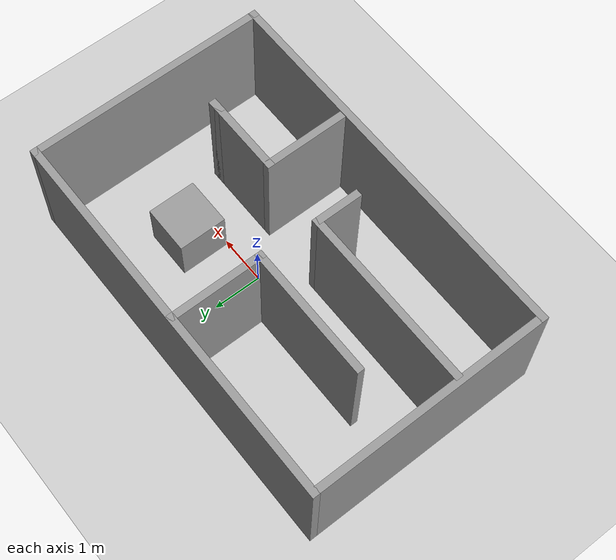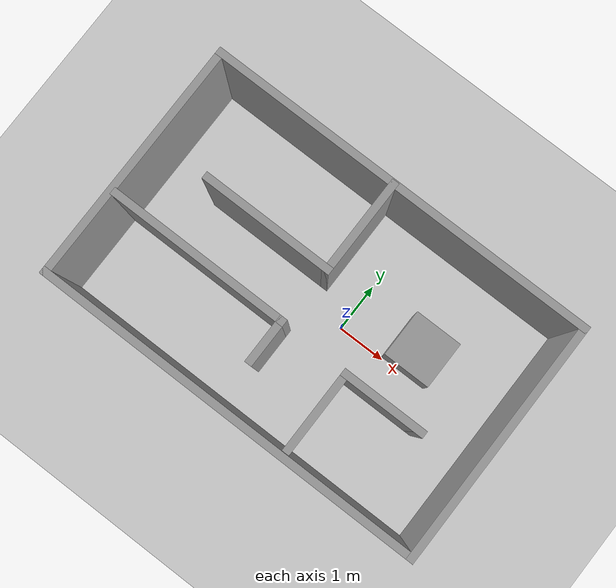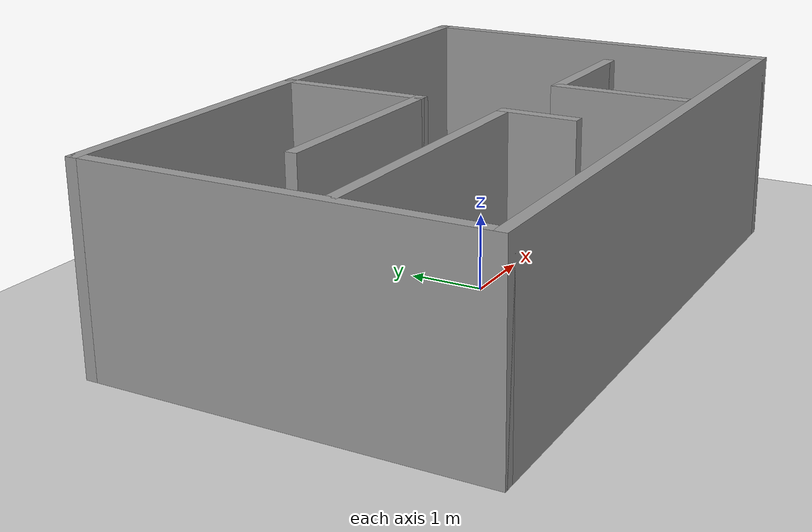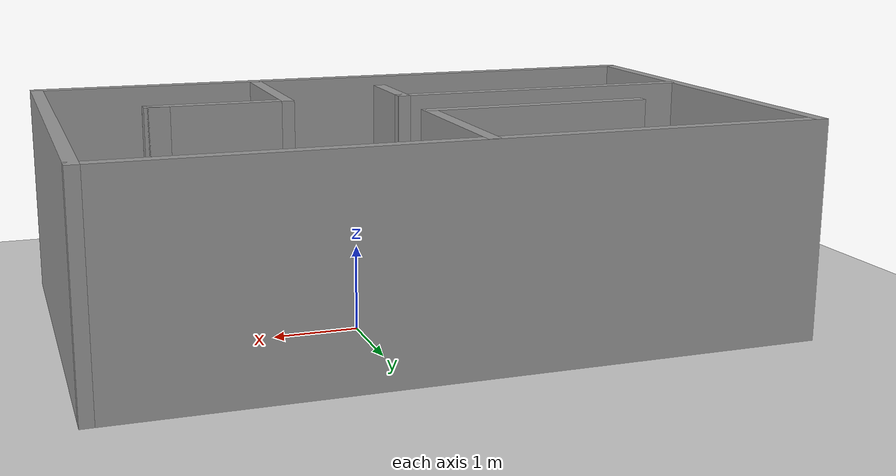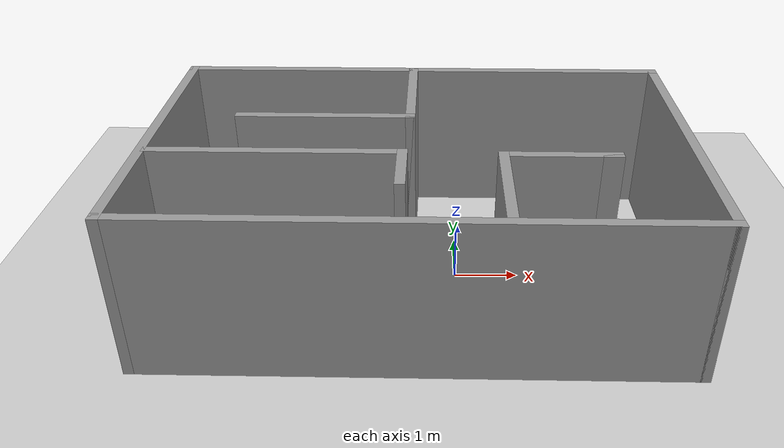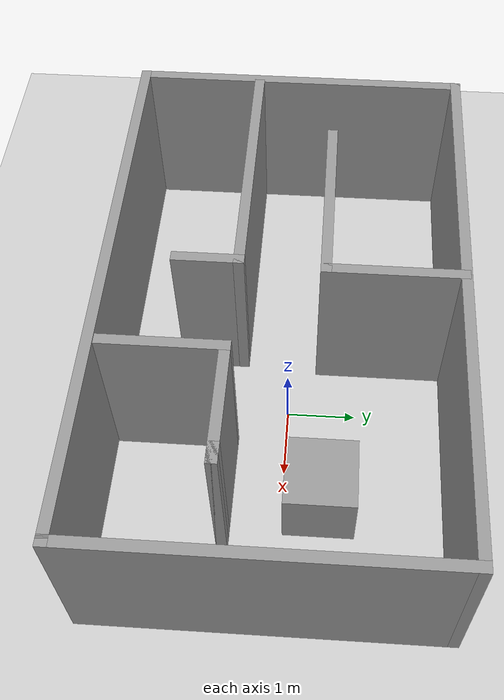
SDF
<sdf version="1.7">
 <world name="default">
  <light name="sun" type="directional">
   <pose>0 0 10 0 -0 0</pose>
   <diffuse>0.8 0.8 0.8 1</diffuse>
   <specular>0.2 0.2 0.2 1</specular>
   <attenuation>
    <range>1000</range>
    <constant>0.9</constant>
    <linear>0.01</linear>
    <quadratic>0.001</quadratic>
   </attenuation>
   <direction>-0.5 0.1 -0.9</direction>
   <spot><inner_angle>0</inner_angle><outer_angle>0</outer_angle><falloff>0</falloff></spot>
  </light>
  <model name="ground_plane">
   <static>1</static>
   <link name="link">
    <collision name="collision">
     <geometry><plane><normal>0 0 1</normal><size>100 100</size></plane></geometry>
     <surface>
      <contact><collide_bitmask>65535</collide_bitmask></contact>
      <friction><ode><mu>100</mu><mu2>50</mu2></ode></friction>
     </surface>
    </collision>
    <visual name="visual">
     <cast_shadows>0</cast_shadows>
     <geometry><plane><normal>0 0 1</normal><size>100 100</size></plane></geometry>
     <material>
      <script><uri>file://media/materials/scripts/gazebo.material</uri><name>Gazebo/Grey</name></script>
     </material>
    </visual>
   </link>
  </model>
  <gravity>0 0 -9.8</gravity>
  <magnetic_field>6e-06 2.3e-05 -4.2e-05</magnetic_field>
  <atmosphere type="adiabatic"/>
  <physics type="ode">
   <max_step_size>0.001</max_step_size>
   <real_time_factor>1</real_time_factor>
   <real_time_update_rate>1000</real_time_update_rate>
  </physics>
  <scene><ambient>0.4 0.4 0.4 1</ambient><background>0.7 0.7 0.7 1</background><shadows>1</shadows></scene>
  <audio><device>default</device></audio>
  <spherical_coordinates>
   <surface_model>EARTH_WGS84</surface_model>
   <latitude_deg>0</latitude_deg>
   <longitude_deg>0</longitude_deg>
   <elevation>0</elevation>
   <heading_deg>0</heading_deg>
  </spherical_coordinates>
  <model name="room">
   <pose>-0.583137 0.00359 0.139473 0 -0 0</pose>
   <link name="Wall_1">
    <collision name="Wall_1_Collision">
     <geometry><box><size>5 0.15 2.5</size></box></geometry>
     <pose>0 0 1.25 0 -0 0</pose>
    </collision>
    <visual name="Wall_1_Visual">
     <pose>0 0 1.25 0 -0 0</pose>
     <geometry><box><size>5 0.15 2.5</size></box></geometry>
     <material>
      <script><uri>file://media/materials/scripts/gazebo.material</uri><name>Gazebo/Grey</name></script>
      <ambient>1 1 1 1</ambient>
     </material>
     <meta><layer>0</layer></meta>
    </visual>
    <pose>-3.925 -0.0975 0 0 -0 -1.5708</pose>
   </link>
   <link name="Wall_10">
    <collision name="Wall_10_Collision">
     <geometry><box><size>3.75 0.15 2.5</size></box></geometry>
     <pose>0 0 1.25 0 -0 0</pose>
    </collision>
    <visual name="Wall_10_Visual">
     <pose>0 0 1.25 0 -0 0</pose>
     <geometry><box><size>3.75 0.15 2.5</size></box></geometry>
     <material>
      <script><uri>file://media/materials/scripts/gazebo.material</uri><name>Gazebo/Grey</name></script>
      <ambient>1 1 1 1</ambient>
     </material>
     <meta><layer>0</layer></meta>
    </visual>
    <pose>-2.02476 -0.722095 0 0 -0 0</pose>
   </link>
   <link name="Wall_11">
    <collision name="Wall_11_Collision">
     <geometry><box><size>1 0.15 2.5</size></box></geometry>
     <pose>0 0 1.25 0 -0 0</pose>
    </collision>
    <visual name="Wall_11_Visual">
     <pose>0 0 1.25 0 -0 0</pose>
     <geometry><box><size>1 0.15 2.5</size></box></geometry>
     <material>
      <script><uri>file://media/materials/scripts/gazebo.material</uri><name>Gazebo/Grey</name></script>
      <ambient>1 1 1 1</ambient>
     </material>
     <meta><layer>0</layer></meta>
    </visual>
    <pose>-0.224762 -1.14709 0 0 -0 -1.5708</pose>
   </link>
   <link name="Wall_13">
    <collision name="Wall_13_Collision">
     <geometry><box><size>1.75 0.15 2.5</size></box></geometry>
     <pose>0 0 1.25 0 -0 0</pose>
    </collision>
    <visual name="Wall_13_Visual">
     <pose>0 0 1.25 0 -0 0</pose>
     <geometry><box><size>1.75 0.15 2.5</size></box></geometry>
     <material>
      <script><uri>file://media/materials/scripts/gazebo.material</uri><name>Gazebo/Grey</name></script>
      <ambient>1 1 1 1</ambient>
     </material>
     <meta><layer>0</layer></meta>
    </visual>
    <pose>1.19489 -1.56616 0 0 -0 1.5708</pose>
   </link>
   <link name="Wall_14">
    <collision name="Wall_14_Collision">
     <geometry><box><size>1.75 0.15 2.5</size></box></geometry>
     <pose>0 0 1.25 0 -0 0</pose>
    </collision>
    <visual name="Wall_14_Visual">
     <pose>0 0 1.25 0 -0 0</pose>
     <geometry><box><size>1.75 0.15 2.5</size></box></geometry>
     <material>
      <script><uri>file://media/materials/scripts/gazebo.material</uri><name>Gazebo/Grey</name></script>
      <ambient>1 1 1 1</ambient>
     </material>
     <meta><layer>0</layer></meta>
    </visual>
    <pose>1.99489 -0.766161 0 0 -0 0</pose>
   </link>
   <link name="Wall_15">
    <collision name="Wall_15_Collision">
     <geometry><box><size>0.3 0.15 2.5</size></box></geometry>
     <pose>0 0 1.25 0 -0 0</pose>
    </collision>
    <visual name="Wall_15_Visual">
     <pose>0 0 1.25 0 -0 0</pose>
     <geometry><box><size>0.3 0.15 2.5</size></box></geometry>
     <material>
      <script><uri>file://media/materials/scripts/gazebo.material</uri><name>Gazebo/Grey</name></script>
      <ambient>1 1 1 1</ambient>
     </material>
     <meta><layer>0</layer></meta>
    </visual>
    <pose>2.71989 -0.766161 0 0 -0 3.14159</pose>
   </link>
   <link name="Wall_2">
    <collision name="Wall_2_Collision">
     <geometry><box><size>8 0.15 2.5</size></box></geometry>
     <pose>0 0 1.25 0 -0 0</pose>
    </collision>
    <visual name="Wall_2_Visual">
     <pose>0 0 1.25 0 -0 0</pose>
     <geometry><box><size>8 0.15 2.5</size></box></geometry>
     <material>
      <script><uri>file://media/materials/scripts/gazebo.material</uri><name>Gazebo/Grey</name></script>
      <ambient>1 1 1 1</ambient>
     </material>
     <meta><layer>0</layer></meta>
    </visual>
    <pose>0 -2.5225 0 0 -0 0</pose>
   </link>
   <link name="Wall_3">
    <collision name="Wall_3_Collision">
     <geometry><box><size>5 0.15 2.5</size></box></geometry>
     <pose>0 0 1.25 0 -0 0</pose>
    </collision>
    <visual name="Wall_3_Visual">
     <pose>0 0 1.25 0 -0 0</pose>
     <geometry><box><size>5 0.15 2.5</size></box></geometry>
     <material>
      <script><uri>file://media/materials/scripts/gazebo.material</uri><name>Gazebo/Grey</name></script>
      <ambient>1 1 1 1</ambient>
     </material>
     <meta><layer>0</layer></meta>
    </visual>
    <pose>3.925 -0.0975 0 0 -0 1.5708</pose>
   </link>
   <link name="Wall_4">
    <collision name="Wall_4_Collision">
     <geometry><box><size>8 0.15 2.5</size></box></geometry>
     <pose>0 0 1.25 0 -0 0</pose>
    </collision>
    <visual name="Wall_4_Visual">
     <pose>0 0 1.25 0 -0 0</pose>
     <geometry><box><size>8 0.15 2.5</size></box></geometry>
     <material>
      <script><uri>file://media/materials/scripts/gazebo.material</uri><name>Gazebo/Grey</name></script>
      <ambient>1 1 1 1</ambient>
     </material>
     <meta><layer>0</layer></meta>
    </visual>
    <pose>0 2.3275 0 0 -0 3.14159</pose>
   </link>
   <link name="Wall_6">
    <collision name="Wall_6_Collision">
     <geometry><box><size>2.75 0.15 2.5</size></box></geometry>
     <pose>0 0 1.25 0 -0 0</pose>
    </collision>
    <visual name="Wall_6_Visual">
     <pose>0 0 1.25 0 -0 0</pose>
     <geometry><box><size>2.75 0.15 2.5</size></box></geometry>
     <material>
      <script><uri>file://media/materials/scripts/gazebo.material</uri><name>Gazebo/Grey</name></script>
      <ambient>1 1 1 1</ambient>
     </material>
     <meta><layer>0</layer></meta>
    </visual>
    <pose>-1.445 0.4575 0 0 -0 0</pose>
   </link>
   <link name="Wall_8">
    <collision name="Wall_8_Collision">
     <geometry><box><size>2 0.15 2.5</size></box></geometry>
     <pose>0 0 1.25 0 -0 0</pose>
    </collision>
    <visual name="Wall_8_Visual">
     <pose>0 0 1.25 0 -0 0</pose>
     <geometry><box><size>2 0.15 2.5</size></box></geometry>
     <material>
      <script><uri>file://media/materials/scripts/gazebo.material</uri><name>Gazebo/Grey</name></script>
      <ambient>1 1 1 1</ambient>
     </material>
     <meta><layer>0</layer></meta>
    </visual>
    <pose>-0.145 1.3825 0 0 -0 1.5708</pose>
   </link>
   <static>1</static>
  </model>
  <model name="unit_box">
   <pose>1.45093 0.535074 0.5 0 -0 4e-06</pose>
   <link name="link">
    <inertial>
     <mass>1</mass>
     <inertia>
      <ixx>0.166667</ixx>
      <ixy>0</ixy>
      <ixz>0</ixz>
      <iyy>0.166667</iyy>
      <iyz>0</iyz>
      <izz>0.166667</izz>
     </inertia>
    </inertial>
    <collision name="collision"><geometry><box><size>1 1 1</size></box></geometry></collision>
    <visual name="visual">
     <geometry><box><size>1 1 1</size></box></geometry>
     <material>
      <script><name>Gazebo/Grey</name><uri>file://media/materials/scripts/gazebo.material</uri></script>
     </material>
    </visual>
   </link>
  </model>
 </world>
</sdf>
